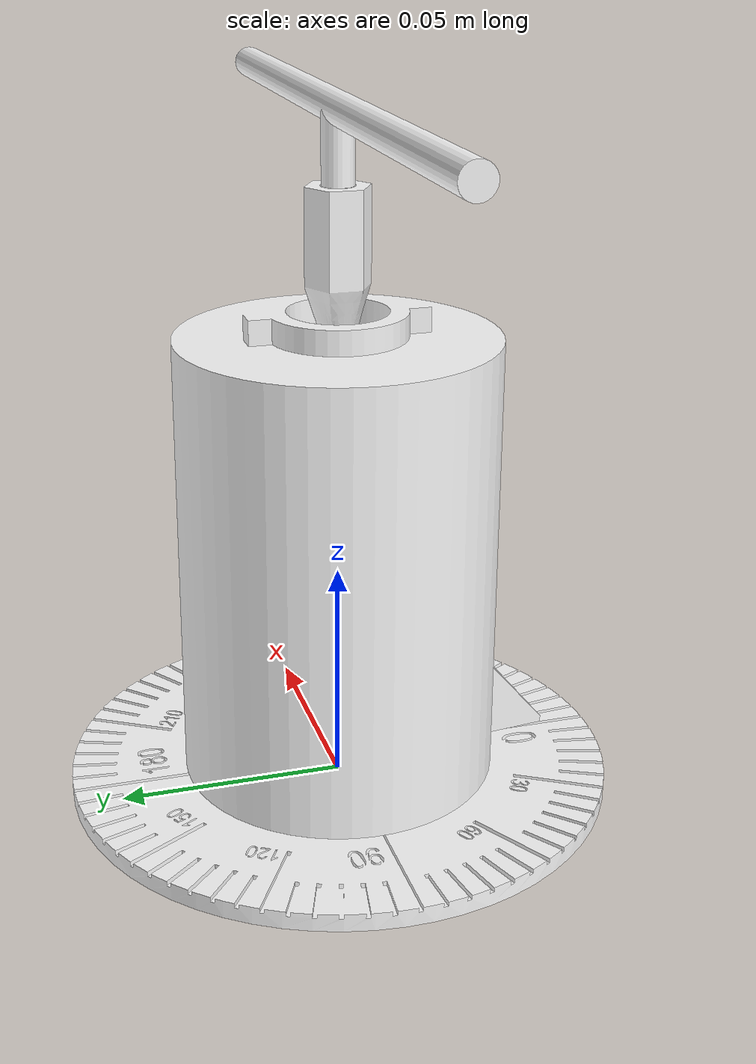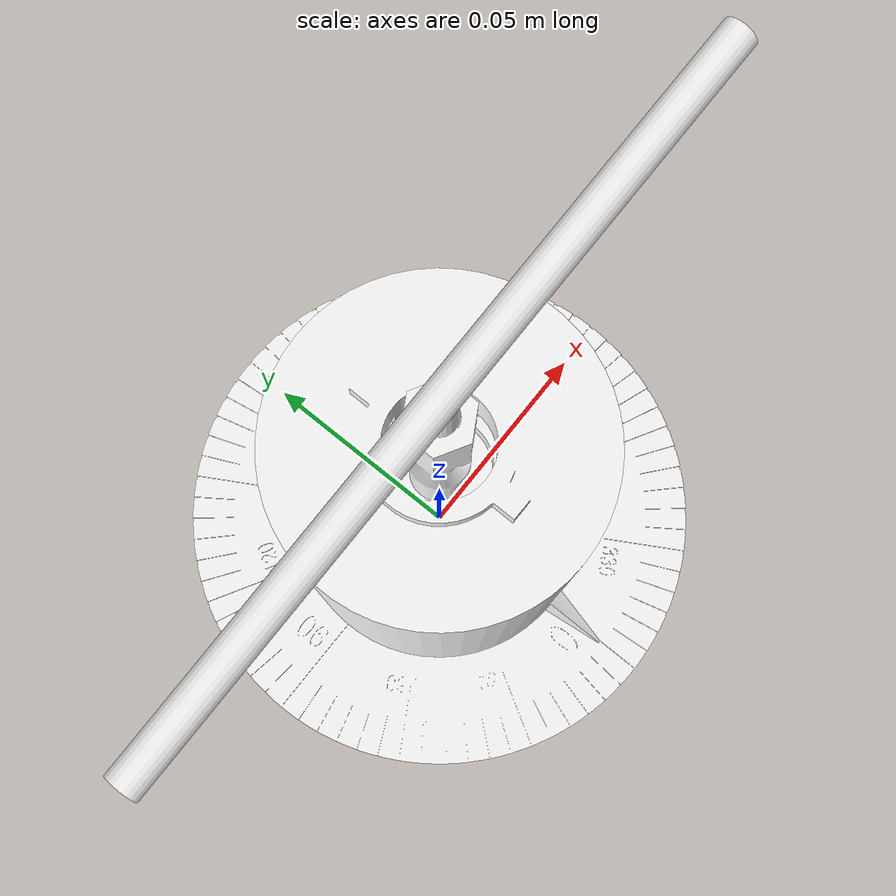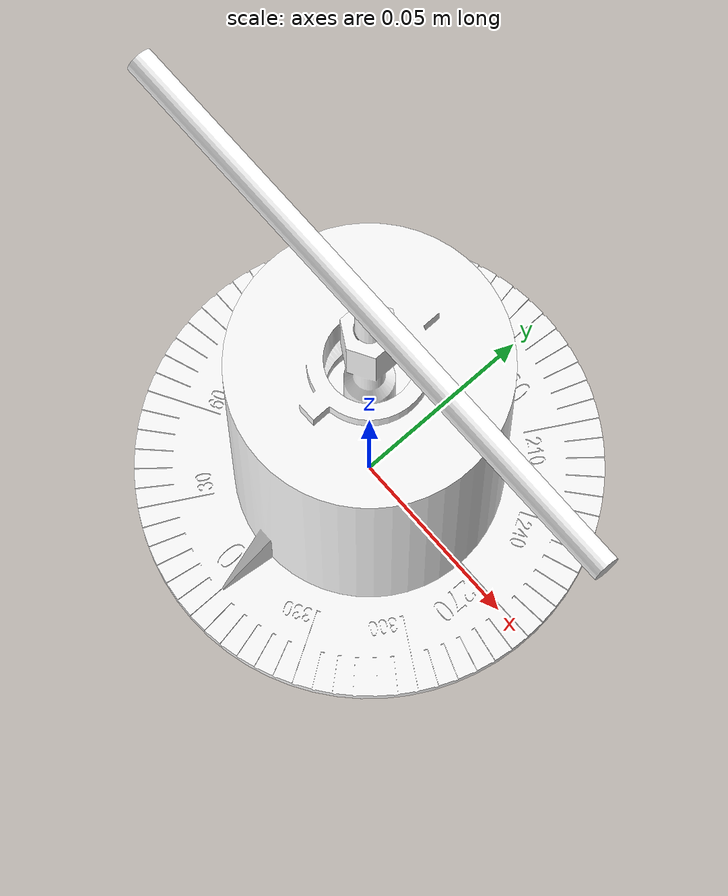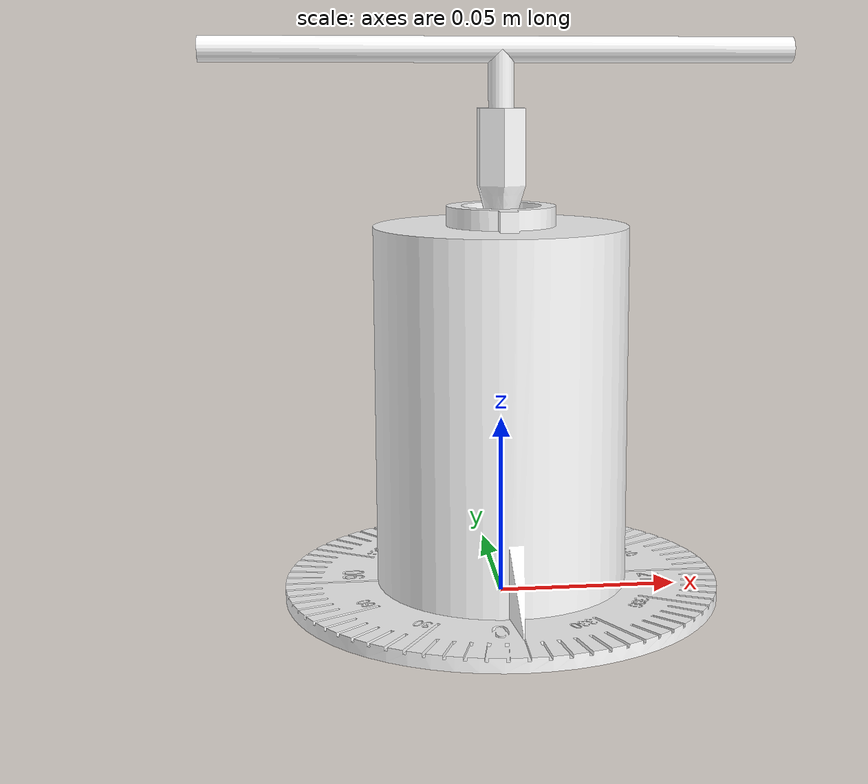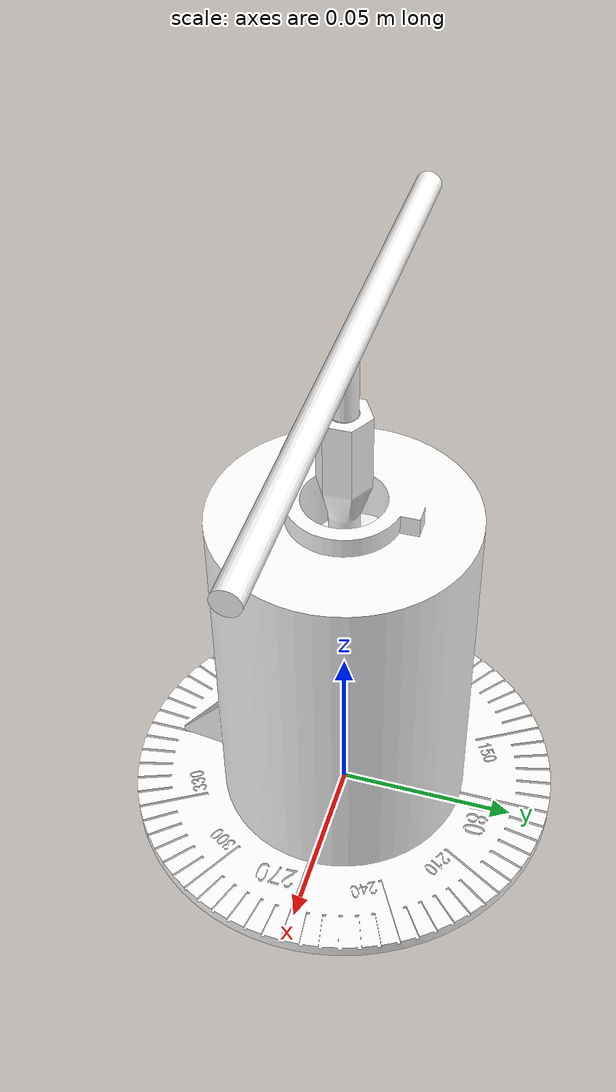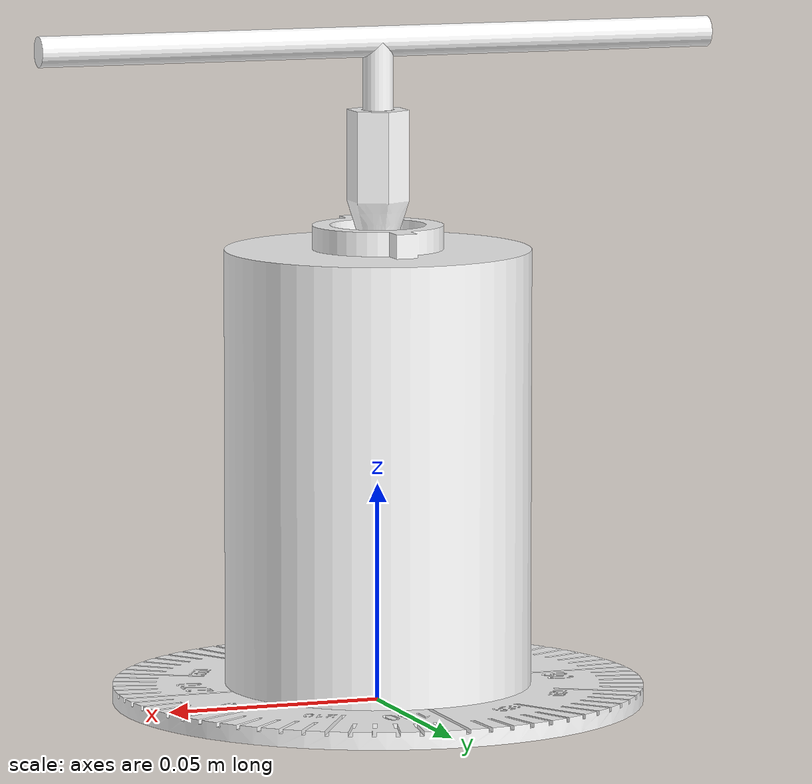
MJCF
<mujoco model="C2_Stick">

  <asset>
    <material name="object_material" rgba="1 1 1 1" shininess="0.3"/>

    <mesh name="angle_plate" file="angle_plate.stl" scale="1 1 1"/>
    <mesh name="clutch_rod" file="clutch_rod.stl" scale="1 1 1"/>
    <mesh name="clutch_rotor" file="clutch_rotor.stl" scale="1 1 1"/>
    <mesh name="contact_cylinder" file="contact_cylinder.stl" scale="1 1 1"/>
  </asset>

  <default>
    <default class="visual">
      <geom contype="0" conaffinity="0" group="2"/>
    </default>
    <default class="collision">
      <geom group="3"/>
    </default>
  </default>

  <worldbody>

    <body name="conti_rot_base" pos="0 0 0">
      <geom name="angle_plate" type="mesh" mesh="angle_plate" material="object_material" class="visual"/>
      <geom type="cylinder" size="0.06075 0.002" pos="0 0 0.002" density="248" class="collision"/>
      <geom type="cylinder" size="0.0308 0.0315" pos="0 0 0.0355" density="248"/>
    </body>

    <body name="pen_rod" pos="0 0 0.067">
      <joint name="pen_rod_slide_joint" type="slide" pos="0 0 0" axis="0 0 1" range="-0.01 0.045" damping="100"/>
      <joint name="pen_rod_hinge_joint" type="hinge" axis="0 0 1"/>
      <geom type="cylinder" size="0.0035 0.080" quat="0.7071068 0 0.7071068 0" pos="0 0 0.08425" material="object_material" mass="0.05"/>
      <geom type="cylinder" size="0.0035 0.00775" pos="0 0 0.0765" material="object_material" density="248"/>
      <geom name="clutch_rod" type="mesh" mesh="clutch_rod" material="object_material" class="visual"/>
      <geom name="contact_cylinder" type="mesh" mesh="contact_cylinder" pos="0 0 0" class="collision" mass="0.05"/>
    </body>

    <body name="clutch_rotor" pos="0 0 0.004">
      <joint name="clutch_rotor_slide_joint" type="slide" pos="0 0 0" axis="0 0 1" range="0 0.030" damping="1"/>
      <joint name="clutch_rotor_hinge_joint" type="hinge" axis="0 0 1"/>
      <geom name="clutch_rotor" type="mesh" mesh="clutch_rotor" material="object_material" class="visual"/>
      <geom type="cylinder" size="0.035 0.002" pos="0 0 0.098" mass="0.3" class="collision"/>
    </body>

  </worldbody>
</mujoco>
